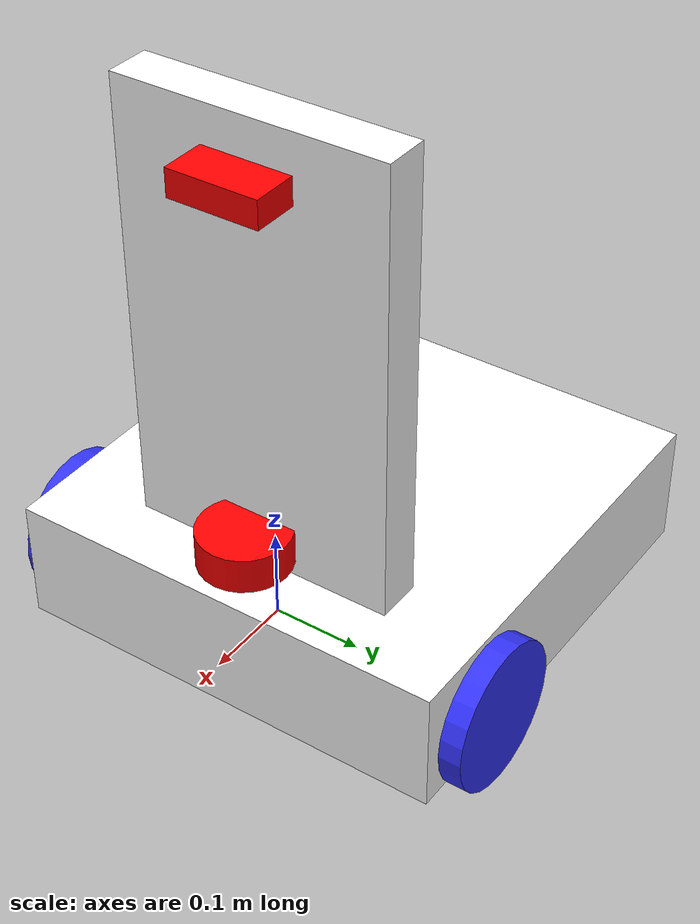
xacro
<?xml version="1.0"?>
<robot xmlns:xacro="http://www.ros.org/wiki/xacro" name="robot">

    <xacro:arg name="use_ros2_control" default="true"/>
    <xacro:arg name="sim_mode" default="false"/>

    <xacro:include filename="robot_core.xacro" />

    <xacro:if value="$(arg use_ros2_control)">
        <xacro:include filename="ros2_control.xacro"/>
    </xacro:if>

    <xacro:unless value="$(arg use_ros2_control)">
        <xacro:include filename="gazebo_control.xacro"/>
    </xacro:unless>
    <xacro:include filename="lidar.xacro"/>
    <xacro:include filename="camera.xacro"/>

</robot>

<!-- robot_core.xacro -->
<robot xmlns:xacro="http://www.ros.org/wiki/xacro" >

    <xacro:include filename="inertial_macros.xacro"/>

    <xacro:property name="chassis_length" value="0.5"/>
    <xacro:property name="chassis_width" value="0.5"/>
    <xacro:property name="chassis_height" value="0.138"/>
    <xacro:property name="chassis_mass" value="1.5"/>    <!-- nilai asal-->
    <xacro:property name="chassis_upper_length" value = "0.05"/>
    <xacro:property name="chassis_upper_width" value = "0.30"/>
    <xacro:property name="chassis_upper_height" value = "0.515"/>
    <xacro:property name="chassis_upper_mass" value = "0.01"/>
    <xacro:property name="chassis_offset_z" value = "${chassis_upper_height/2 + chassis_height/2}"/>
    <xacro:property name="wheel_radius" value="0.0815"/>
    <xacro:property name="wheel_thickness" value="0.05"/>
    <xacro:property name="wheel_mass" value="2.0"/>    <!-- nilai asal-->
    <xacro:property name="wheel_offset_x" value="0.1"/>
    <xacro:property name="wheel_offset_y" value="0.25"/>    <!-- nilai asal-->
    <xacro:property name="wheel_offset_z" value="0.05"/>
    <xacro:property name="caster_wheel_radius" value="0.03"/>
    <xacro:property name="caster_wheel_mass" value="1.0"/>     <!-- nilai asal-->
    <xacro:property name="caster_wheel_offset_x" value="0.45"/>
    <xacro:property name="caster_wheel_offset_y" value="0.20"/>  <!-- nilai asal-->
    <xacro:property name="caster_wheel_offset_z" value="${wheel_offset_z - wheel_radius + caster_wheel_radius}"/>

    <material name="white">
        <color rgba="1 1 1 1" />
    </material>

    <material name="orange">
        <color rgba="1 0.3 0.1 1" />
    </material>

    <material name="blue">
        <color rgba="0.2 0.2 1 1" />
    </material>

    <material name="black">
        <color rgba="0 0 0 1" />
    </material>

    <material name="red">
        <color rgba="1 0 0 1" />
    </material>

    <!-- BASE LINK -->

    <link name="base_link">

    </link>

    <!-- BASE_FOOTPRINT LINK -->

    <joint name="base_footprint_joint" type="fixed">
        <parent link="base_link" />
        <child link="base_footprint"/>
        <origin xyz="0 0 0" rpy="0 0 0"/>
    </joint>

    <link name="base_footprint">
    </link>

    <!-- CHASSIS LINK -->

    <joint name="chassis_joint" type="fixed">
        <parent link="base_link" />
        <child link="chassis" />
        <origin xyz="${wheel_offset_x} 0 ${-wheel_offset_z}" />   <!-- titik cartesian untuk robot-->
    </joint>

    <link name="chassis">
        <visual>
            <origin xyz = "${-chassis_length/2} 0 ${chassis_height/2}" />  <!-- titik cartesian untuk rangka badan-->
            <geometry>
                <box size= "${chassis_length} ${chassis_width} ${chassis_height}" />   <!-- geometry dari rangka badan xyz = 30x30x15 cm-->
            </geometry>
            <material name ="white"/>
        </visual>
        <collision>
            <origin xyz = "${chassis_length/2} 0 ${chassis_height/2}" />  <!-- titik cartesian untuk rangka badan-->
            <geometry>
                <box size= "${chassis_length} ${chassis_width} ${chassis_height}" />   <!-- geometry dari rangka badan xyz = 30x30x15 cm-->
            </geometry>
        </collision>
        <xacro:inertial_box mass="${chassis_mass}" x="${chassis_length}" y="${chassis_width}" z="${chassis_height}">
            <origin xyz="${chassis_length/2} 0 ${chassis_height/2}" rpy="0 0 0"/>
        </xacro:inertial_box>
    </link>

    <gazebo reference="chassis">
        <material>Gazebo/White</material>
    </gazebo>

    <!-- CHASSIS UPPER LINK -->

    <joint name="chassis_upper_joint" type="fixed">
        <parent link="base_link" />
        <child link="chassis_upper" />
        <origin xyz="0 0 ${chassis_offset_z}" />   <!--titik cartesian untuk robot-->
    </joint>

    <link name="chassis_upper">
        <visual>
            <geometry>
                <box size= "${chassis_upper_length} ${chassis_upper_width} ${chassis_upper_height}" />   <!--geometry dari rangka badan xyz = 15x15x30 cm -->
            </geometry>
            <material name ="white"/>
        </visual>
        <collision>
            <geometry>
                <box size= "${chassis_upper_length} ${chassis_upper_width} ${chassis_upper_height}" />   <!--geometry dari rangka badan xyz = 15x15x30 cm-->
            </geometry>
        </collision>
        <xacro:inertial_box mass="${chassis_upper_mass}" x="${chassis_upper_length}" y="${chassis_upper_width}" z="${chassis_upper_height}">
            <origin xyz="0 0 0" rpy="0 0 0"/>
        </xacro:inertial_box>
    </link>

    <gazebo reference="chassis_upper">
        <material>Gazebo/White</material>
    </gazebo>

    <!-- LEFT WHEEL LINK -->

    <joint name="left_wheel_joint" type="continuous">
        <parent link="base_link"/>
        <child link="left_wheel"/>
        <origin xyz="0 ${wheel_offset_y} 0" rpy="${-pi/2} 0 0"/>
        <axis xyz = "0 0 1"/>
    </joint>

    <link name="left_wheel">
        <visual>
            <geometry>
                <cylinder radius="${wheel_radius}" length="${wheel_thickness}"/>   <!-- geometry dari roda kiri-->
            </geometry>
            <material name="blue"/>
        </visual>
        <collision>
            <geometry>
                <sphere radius="${wheel_radius}"/>   <!-- collision dari roda kiri-->
            </geometry>
        </collision>
        <xacro:inertial_cylinder mass="${wheel_mass}" length="${wheel_thickness}" radius="${wheel_radius}">
            <origin xyz="0 0 0" rpy="0 0 0"/>
        </xacro:inertial_cylinder>
    </link>

    <gazebo reference="left_wheel">
        <material>Gazebo/Blue</material>
    </gazebo>

    <!-- RIGHT WHEEL LINK -->

    <joint name="right_wheel_joint" type="continuous">
        <parent link="base_link"/>
        <child link="right_wheel"/>
        <origin xyz="0 ${-wheel_offset_y} 0" rpy="${pi/2} 0 0"/>
        <axis xyz = "0 0 -1"/>
    </joint>

    <link name="right_wheel">
        <visual>
            <geometry>
                <cylinder radius="${wheel_radius}" length="${wheel_thickness}"/>   <!-- geometry dari roda kiri-->
            </geometry>
            <material name="blue"/>
        </visual>
        <collision>
            <geometry>
                <sphere radius="0.0815" length="0.05"/>   <!-- collision dari roda kiri-->
            </geometry>
        </collision>
        <xacro:inertial_cylinder mass="${wheel_mass}" length="${wheel_thickness}" radius="${wheel_radius}">
            <origin xyz="0 0 0" rpy="0 0 0"/>
        </xacro:inertial_cylinder>
    </link>

    <gazebo reference="right_wheel">
        <material>Gazebo/Blue</material>
    </gazebo>

    <!-- CASTER WHEEL LEFT LINK -->

    <joint name="left_caster_wheel_joint" type="fixed">
        <parent link="chassis" />
        <child link="left_caster_wheel" />
        <origin xyz="${-caster_wheel_offset_x} ${caster_wheel_offset_y} ${caster_wheel_offset_z}" rpy="${-pi/2} 0 0"/>
        <axis xyz = "0 0 1"/>
    </joint>

    <link name="left_caster_wheel">
        <visual>
            <geometry>
                <sphere radius="${caster_wheel_radius}"/>
            </geometry>
            <material name="orange"/>
        </visual>
        <collision>
            <geometry>
                <sphere radius="${caster_wheel_radius}"/>
            </geometry>
        </collision>
        <xacro:inertial_sphere mass="${caster_wheel_mass}" radius="${caster_wheel_radius}">
            <origin xyz="0 0 0" rpy="0 0 0"/>
        </xacro:inertial_sphere>
    </link>

    <gazebo reference="left_caster_wheel">
        <material>Gazebo/Orange</material>
        <mu1 value="0.001"/>
        <mu2 value="0.001"/>
    </gazebo>

    <!-- CASTER WHEEL RIGHT LINK -->

    <joint name="right_caster_wheel_joint" type="fixed">
        <parent link="chassis" />
        <child link="right_caster_wheel" />
        <origin xyz="${-caster_wheel_offset_x} ${-caster_wheel_offset_y} ${caster_wheel_offset_z}" rpy="${pi/2} 0 0"/>
        <axis xyz = "0 0 -1"/>
    </joint>

    <link name="right_caster_wheel">
        <visual>
            <geometry>
                <sphere radius="${caster_wheel_radius}"/>
            </geometry>
            <material name="orange"/>
        </visual>
        <collision>
            <geometry>
                <sphere radius="${caster_wheel_radius}"/>
            </geometry>
        </collision>
        <xacro:inertial_sphere mass="${caster_wheel_mass}" radius="${caster_wheel_radius}">
            <origin xyz="0 0 0" rpy="0 0 0"/>
        </xacro:inertial_sphere>
    </link>

    <gazebo reference="right_caster_wheel">
        <material>Gazebo/Orange</material>
        <mu1 value="0.001"/>
        <mu2 value="0.001"/>
    </gazebo>

</robot>

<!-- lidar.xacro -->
<robot xmlns:xacro="http://www.ros.org/wiki/xacro" >

    <joint name="laser_joint" type="fixed">
        <parent link="chassis" />
        <child link="laser_frame"/>
        <origin xyz="-0.05 0 0.175"  rpy="0 0 ${pi}"/>

    </joint>

    <link name="laser_frame">
        <visual>
            <geometry>
                <cylinder radius="0.05" length="0.04" />
            </geometry>
            <material name="red"/>
        </visual>
        <collision>
            <geometry>
                <cylinder radius="0.05" length="0.04" />
            </geometry>
        </collision>
    </link>

    <gazebo reference ="laser_frame">
        <material>Gazebo/Red</material>
        <sensor name="laser" type="ray">
            <pose>0 0 0 0 0 0</pose>
            <visualize>true</visualize>
            <update_rate>10</update_rate>
            <ray>
                <scan >
                    <horizontal>
                        <samples>360</samples>
                        <min_angle>-3.14</min_angle>
                        <max_angle>3.14</max_angle>
                    </horizontal>
                </scan>
                <range>
                    <min>0.3</min>
                    <max>12</max>
                </range>
            </ray>
            <plugin name="laser_controller" filename="libgazebo_ros_ray_sensor.so">
                <ros>
                    <argument>~/out:=scan</argument>
                </ros>
                <output_type>sensor_msgs/LaserScan</output_type>
                <frame_name>laser_frame</frame_name>
            </plugin>
        </sensor>
    </gazebo>

</robot>

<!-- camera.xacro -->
<robot xmlns:xacro="http://www.ros.org/wiki/xacro">

    <joint name="camera_joint" type="fixed">
        <parent link="chassis_upper"/>
        <child link="camera_link"/>
        <origin xyz="0.05 0 0.20" rpy="0 0 0"/>
    </joint>

    <link name="camera_link">
        <visual>
            <geometry>
                <box size="0.05 0.1 0.03"/>
            </geometry>
            <material name="red"/>
        </visual>
    </link>

    <joint name="camera_optical_joint" type="fixed">
        <parent link="camera_link"/>
        <child link="camera_link_optical"/>
        <origin xyz="0.1 0 0" rpy="${-pi/2} 0 ${pi/2}"/>
    </joint>

    <link name="camera_link_optical"></link>

    <gazebo reference="camera_link">
        <material>Gazebo/Red</material>

        <sensor name="camera" type="camera">
        <pose>0 0 0 0 0 0</pose>
        <visualize>true</visualize>
        <update_rate>10</update_rate>
        <camera>
            <horizontal_fov>1.089</horizontal_fov>
            <image>
                <format>R8G8B8</format>
                <width>640</width>
                <height>480</height>
            </image>
            <clip>
                <near>0.05</near>
                <far>8.0</far>
            </clip>
        </camera>
        <plugin name="camera_controller" filename="libgazebo_ros_camera.so">
            <frame_name>camera_link_optical</frame_name>
        </plugin>
        </sensor>
    </gazebo>

</robot>
